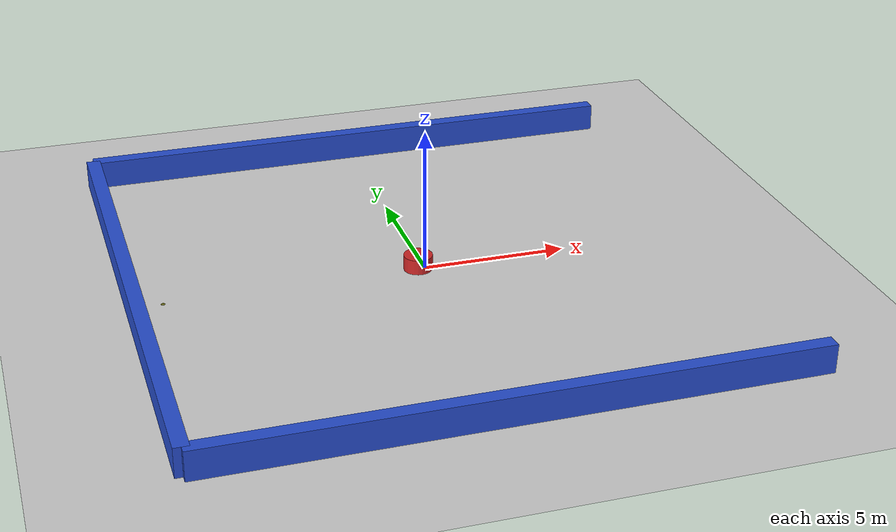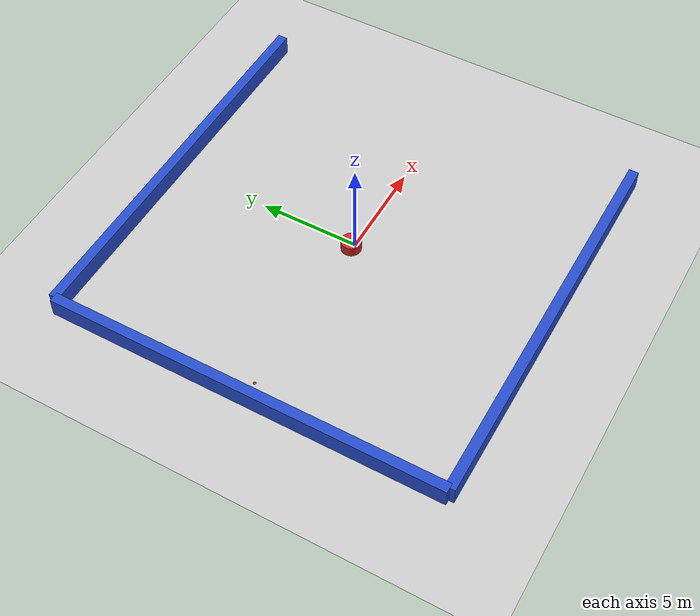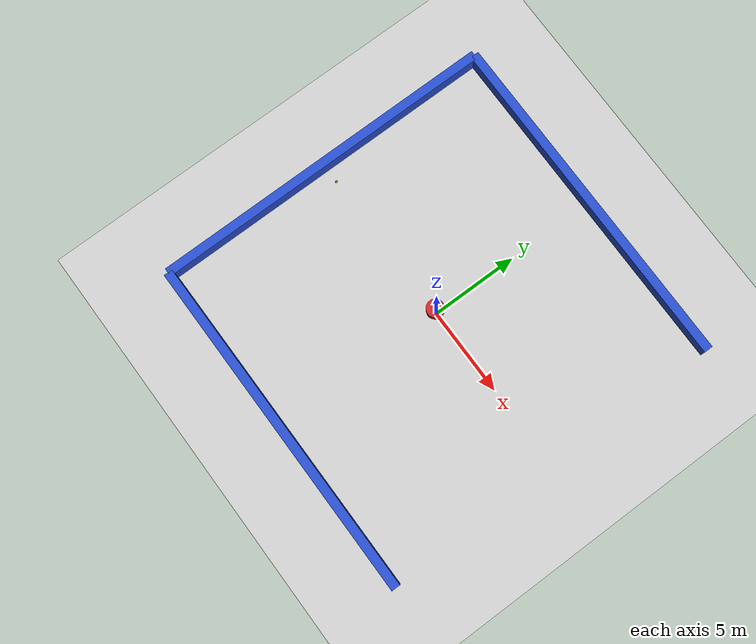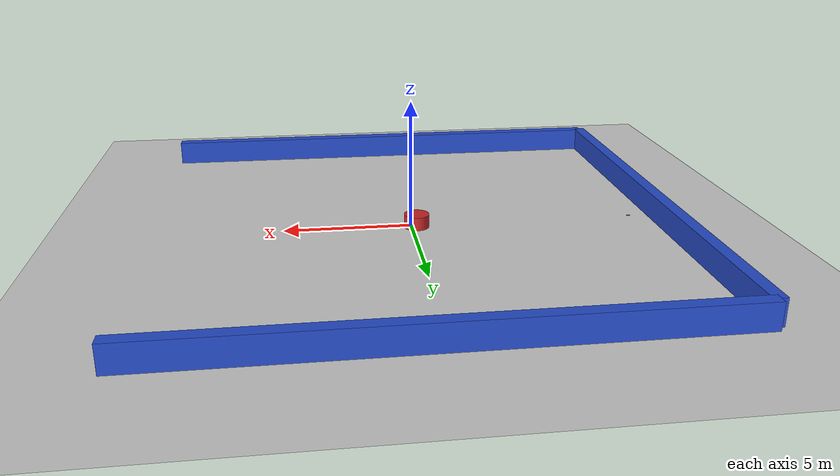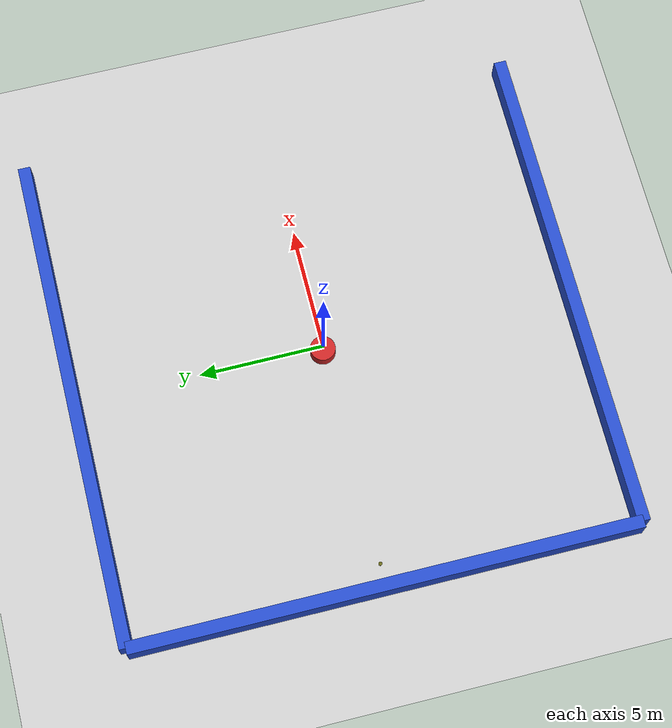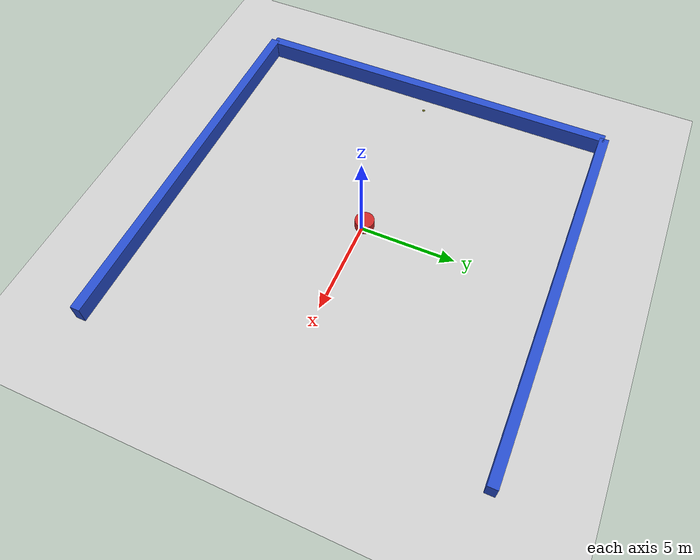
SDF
<sdf version="1.6">
   <world name="default">
      <include>
         <uri>model://ground_plane</uri>
      </include>
      <include>
         <uri>model://sun</uri>
      </include>

    <model name="mediumlibobs_122">
      <static>1</static>
      <pose frame="">-0.225000 0.075000 0.000000 0.000000 0.000000 0.000000</pose>
      <link name="link">
        <inertial>
          <mass>1</mass>
          <inertia>
            <ixx>0.145833</ixx>
            <ixy>0</ixy>
            <ixz>0</ixz>
            <iyy>0.145833</iyy>
            <iyz>0</iyz>
            <izz>0.125</izz>
          </inertia>
        </inertial>
        <collision name="collision">
           <geometry>
            <cylinder>
                <radius>0.5000</radius>
                 <length> 1 </length>
            </cylinder>
          </geometry>
           <surface>
            <contact>
              <ode />
            </contact>
            <bounce />
            <friction>
              <torsional>
                <ode />
              </torsional>
              <ode />
            </friction>
          </surface>
        </collision>
        <visual name="visual">
           <geometry>
            <cylinder>
                <radius>0.5000</radius>
                 <length> 1 </length>
            </cylinder>
          </geometry>
          <material>
            <script>
              <name>Gazebo/Red</name>
              <uri>file://media/materials/scripts/gazebo.material</uri>
            </script>
          </material>
        </visual>
        <self_collide>0</self_collide>
        <kinematic>0</kinematic>
        <gravity>1</gravity>
      </link>
      <plugin name="mediumlibobs_122" filename="mediumlibobs_122.so" />
    </model>

    <model name="mediumlibobs_45">
      <static>1</static>
      <pose frame="">-0.225000 0.075000 0.000000 0.000000 0.000000 0.000000</pose>
      <link name="link">
        <inertial>
          <mass>1</mass>
          <inertia>
            <ixx>0.145833</ixx>
            <ixy>0</ixy>
            <ixz>0</ixz>
            <iyy>0.145833</iyy>
            <iyz>0</iyz>
            <izz>0.125</izz>
          </inertia>
        </inertial>
        <collision name="collision">
           <geometry>
            <cylinder>
                <radius>0.5000</radius>
                 <length> 1 </length>
            </cylinder>
          </geometry>
           <surface>
            <contact>
              <ode />
            </contact>
            <bounce />
            <friction>
              <torsional>
                <ode />
              </torsional>
              <ode />
            </friction>
          </surface>
        </collision>
        <visual name="visual">
           <geometry>
            <cylinder>
                <radius>0.5000</radius>
                 <length> 1 </length>
            </cylinder>
          </geometry>
          <material>
            <script>
              <name>Gazebo/Red</name>
              <uri>file://media/materials/scripts/gazebo.material</uri>
            </script>
          </material>
        </visual>
        <self_collide>0</self_collide>
        <kinematic>0</kinematic>
        <gravity>1</gravity>
      </link>
      <plugin name="mediumlibobs_45" filename="mediumlibobs_45.so" />
    </model>

    <model name="mediumlibobs_145">
      <static>1</static>
      <pose frame="">-0.225000 0.075000 0.000000 0.000000 0.000000 0.000000</pose>
      <link name="link">
        <inertial>
          <mass>1</mass>
          <inertia>
            <ixx>0.145833</ixx>
            <ixy>0</ixy>
            <ixz>0</ixz>
            <iyy>0.145833</iyy>
            <iyz>0</iyz>
            <izz>0.125</izz>
          </inertia>
        </inertial>
        <collision name="collision">
           <geometry>
            <cylinder>
                <radius>0.5000</radius>
                 <length> 1 </length>
            </cylinder>
          </geometry>
           <surface>
            <contact>
              <ode />
            </contact>
            <bounce />
            <friction>
              <torsional>
                <ode />
              </torsional>
              <ode />
            </friction>
          </surface>
        </collision>
        <visual name="visual">
           <geometry>
            <cylinder>
                <radius>0.5000</radius>
                 <length> 1 </length>
            </cylinder>
          </geometry>
          <material>
            <script>
              <name>Gazebo/Red</name>
              <uri>file://media/materials/scripts/gazebo.material</uri>
            </script>
          </material>
        </visual>
        <self_collide>0</self_collide>
        <kinematic>0</kinematic>
        <gravity>1</gravity>
      </link>
      <plugin name="mediumlibobs_145" filename="mediumlibobs_145.so" />
    </model>

    <model name="mediumlibobs_89">
      <static>1</static>
      <pose frame="">-0.225000 0.075000 0.000000 0.000000 0.000000 0.000000</pose>
      <link name="link">
        <inertial>
          <mass>1</mass>
          <inertia>
            <ixx>0.145833</ixx>
            <ixy>0</ixy>
            <ixz>0</ixz>
            <iyy>0.145833</iyy>
            <iyz>0</iyz>
            <izz>0.125</izz>
          </inertia>
        </inertial>
        <collision name="collision">
           <geometry>
            <cylinder>
                <radius>0.5000</radius>
                 <length> 1 </length>
            </cylinder>
          </geometry>
           <surface>
            <contact>
              <ode />
            </contact>
            <bounce />
            <friction>
              <torsional>
                <ode />
              </torsional>
              <ode />
            </friction>
          </surface>
        </collision>
        <visual name="visual">
           <geometry>
            <cylinder>
                <radius>0.5000</radius>
                 <length> 1 </length>
            </cylinder>
          </geometry>
          <material>
            <script>
              <name>Gazebo/Red</name>
              <uri>file://media/materials/scripts/gazebo.material</uri>
            </script>
          </material>
        </visual>
        <self_collide>0</self_collide>
        <kinematic>0</kinematic>
        <gravity>1</gravity>
      </link>
      <plugin name="mediumlibobs_89" filename="mediumlibobs_89.so" />
    </model>

    <model name="mediumlibobs_112">
      <static>1</static>
      <pose frame="">-0.225000 0.075000 0.000000 0.000000 0.000000 0.000000</pose>
      <link name="link">
        <inertial>
          <mass>1</mass>
          <inertia>
            <ixx>0.145833</ixx>
            <ixy>0</ixy>
            <ixz>0</ixz>
            <iyy>0.145833</iyy>
            <iyz>0</iyz>
            <izz>0.125</izz>
          </inertia>
        </inertial>
        <collision name="collision">
           <geometry>
            <cylinder>
                <radius>0.5000</radius>
                 <length> 1 </length>
            </cylinder>
          </geometry>
           <surface>
            <contact>
              <ode />
            </contact>
            <bounce />
            <friction>
              <torsional>
                <ode />
              </torsional>
              <ode />
            </friction>
          </surface>
        </collision>
        <visual name="visual">
           <geometry>
            <cylinder>
                <radius>0.5000</radius>
                 <length> 1 </length>
            </cylinder>
          </geometry>
          <material>
            <script>
              <name>Gazebo/Red</name>
              <uri>file://media/materials/scripts/gazebo.material</uri>
            </script>
          </material>
        </visual>
        <self_collide>0</self_collide>
        <kinematic>0</kinematic>
        <gravity>1</gravity>
      </link>
      <plugin name="mediumlibobs_112" filename="mediumlibobs_112.so" />
    </model>

    <model name="mediumlibobs_178">
      <static>1</static>
      <pose frame="">-0.225000 0.075000 0.000000 0.000000 0.000000 0.000000</pose>
      <link name="link">
        <inertial>
          <mass>1</mass>
          <inertia>
            <ixx>0.145833</ixx>
            <ixy>0</ixy>
            <ixz>0</ixz>
            <iyy>0.145833</iyy>
            <iyz>0</iyz>
            <izz>0.125</izz>
          </inertia>
        </inertial>
        <collision name="collision">
           <geometry>
            <cylinder>
                <radius>0.5000</radius>
                 <length> 1 </length>
            </cylinder>
          </geometry>
           <surface>
            <contact>
              <ode />
            </contact>
            <bounce />
            <friction>
              <torsional>
                <ode />
              </torsional>
              <ode />
            </friction>
          </surface>
        </collision>
        <visual name="visual">
           <geometry>
            <cylinder>
                <radius>0.5000</radius>
                 <length> 1 </length>
            </cylinder>
          </geometry>
          <material>
            <script>
              <name>Gazebo/Red</name>
              <uri>file://media/materials/scripts/gazebo.material</uri>
            </script>
          </material>
        </visual>
        <self_collide>0</self_collide>
        <kinematic>0</kinematic>
        <gravity>1</gravity>
      </link>
      <plugin name="mediumlibobs_178" filename="mediumlibobs_178.so" />
    </model>

    <model name="hardlibobs_32">
      <static>1</static>
      <pose frame="">-0.225000 0.075000 0.000000 0.000000 0.000000 0.000000</pose>
      <link name="link">
        <inertial>
          <mass>1</mass>
          <inertia>
            <ixx>0.145833</ixx>
            <ixy>0</ixy>
            <ixz>0</ixz>
            <iyy>0.145833</iyy>
            <iyz>0</iyz>
            <izz>0.125</izz>
          </inertia>
        </inertial>
        <collision name="collision">
           <geometry>
            <cylinder>
                <radius>0.5000</radius>
                 <length> 1 </length>
            </cylinder>
          </geometry>
           <surface>
            <contact>
              <ode />
            </contact>
            <bounce />
            <friction>
              <torsional>
                <ode />
              </torsional>
              <ode />
            </friction>
          </surface>
        </collision>
        <visual name="visual">
           <geometry>
            <cylinder>
                <radius>0.5000</radius>
                 <length> 1 </length>
            </cylinder>
          </geometry>
          <material>
            <script>
              <name>Gazebo/Red</name>
              <uri>file://media/materials/scripts/gazebo.material</uri>
            </script>
          </material>
        </visual>
        <self_collide>0</self_collide>
        <kinematic>0</kinematic>
        <gravity>1</gravity>
      </link>
      <plugin name="hardlibobs_32" filename="hardlibobs_32.so" />
    </model>

    <model name="mediumlibobs_10">
      <static>1</static>
      <pose frame="">-0.225000 0.075000 0.000000 0.000000 0.000000 0.000000</pose>
      <link name="link">
        <inertial>
          <mass>1</mass>
          <inertia>
            <ixx>0.145833</ixx>
            <ixy>0</ixy>
            <ixz>0</ixz>
            <iyy>0.145833</iyy>
            <iyz>0</iyz>
            <izz>0.125</izz>
          </inertia>
        </inertial>
        <collision name="collision">
           <geometry>
            <cylinder>
                <radius>0.5000</radius>
                 <length> 1 </length>
            </cylinder>
          </geometry>
           <surface>
            <contact>
              <ode />
            </contact>
            <bounce />
            <friction>
              <torsional>
                <ode />
              </torsional>
              <ode />
            </friction>
          </surface>
        </collision>
        <visual name="visual">
           <geometry>
            <cylinder>
                <radius>0.5000</radius>
                 <length> 1 </length>
            </cylinder>
          </geometry>
          <material>
            <script>
              <name>Gazebo/Red</name>
              <uri>file://media/materials/scripts/gazebo.material</uri>
            </script>
          </material>
        </visual>
        <self_collide>0</self_collide>
        <kinematic>0</kinematic>
        <gravity>1</gravity>
      </link>
      <plugin name="mediumlibobs_10" filename="mediumlibobs_10.so" />
    </model>

    <model name="mediumlibobs_57">
      <static>1</static>
      <pose frame="">-0.225000 0.075000 0.000000 0.000000 0.000000 0.000000</pose>
      <link name="link">
        <inertial>
          <mass>1</mass>
          <inertia>
            <ixx>0.145833</ixx>
            <ixy>0</ixy>
            <ixz>0</ixz>
            <iyy>0.145833</iyy>
            <iyz>0</iyz>
            <izz>0.125</izz>
          </inertia>
        </inertial>
        <collision name="collision">
           <geometry>
            <cylinder>
                <radius>0.5000</radius>
                 <length> 1 </length>
            </cylinder>
          </geometry>
           <surface>
            <contact>
              <ode />
            </contact>
            <bounce />
            <friction>
              <torsional>
                <ode />
              </torsional>
              <ode />
            </friction>
          </surface>
        </collision>
        <visual name="visual">
           <geometry>
            <cylinder>
                <radius>0.5000</radius>
                 <length> 1 </length>
            </cylinder>
          </geometry>
          <material>
            <script>
              <name>Gazebo/Red</name>
              <uri>file://media/materials/scripts/gazebo.material</uri>
            </script>
          </material>
        </visual>
        <self_collide>0</self_collide>
        <kinematic>0</kinematic>
        <gravity>1</gravity>
      </link>
      <plugin name="mediumlibobs_57" filename="mediumlibobs_57.so" />
    </model>

    <model name="hardlibobs_188">
      <static>1</static>
      <pose frame="">-0.225000 0.075000 0.000000 0.000000 0.000000 0.000000</pose>
      <link name="link">
        <inertial>
          <mass>1</mass>
          <inertia>
            <ixx>0.145833</ixx>
            <ixy>0</ixy>
            <ixz>0</ixz>
            <iyy>0.145833</iyy>
            <iyz>0</iyz>
            <izz>0.125</izz>
          </inertia>
        </inertial>
        <collision name="collision">
           <geometry>
            <cylinder>
                <radius>0.5000</radius>
                 <length> 1 </length>
            </cylinder>
          </geometry>
           <surface>
            <contact>
              <ode />
            </contact>
            <bounce />
            <friction>
              <torsional>
                <ode />
              </torsional>
              <ode />
            </friction>
          </surface>
        </collision>
        <visual name="visual">
           <geometry>
            <cylinder>
                <radius>0.5000</radius>
                 <length> 1 </length>
            </cylinder>
          </geometry>
          <material>
            <script>
              <name>Gazebo/Red</name>
              <uri>file://media/materials/scripts/gazebo.material</uri>
            </script>
          </material>
        </visual>
        <self_collide>0</self_collide>
        <kinematic>0</kinematic>
        <gravity>1</gravity>
      </link>
      <plugin name="hardlibobs_188" filename="hardlibobs_188.so" />
    </model>

    <model name="mediumlibobs_128">
      <static>1</static>
      <pose frame="">-0.225000 0.075000 0.000000 0.000000 0.000000 0.000000</pose>
      <link name="link">
        <inertial>
          <mass>1</mass>
          <inertia>
            <ixx>0.145833</ixx>
            <ixy>0</ixy>
            <ixz>0</ixz>
            <iyy>0.145833</iyy>
            <iyz>0</iyz>
            <izz>0.125</izz>
          </inertia>
        </inertial>
        <collision name="collision">
           <geometry>
            <cylinder>
                <radius>0.5000</radius>
                 <length> 1 </length>
            </cylinder>
          </geometry>
           <surface>
            <contact>
              <ode />
            </contact>
            <bounce />
            <friction>
              <torsional>
                <ode />
              </torsional>
              <ode />
            </friction>
          </surface>
        </collision>
        <visual name="visual">
           <geometry>
            <cylinder>
                <radius>0.5000</radius>
                 <length> 1 </length>
            </cylinder>
          </geometry>
          <material>
            <script>
              <name>Gazebo/Red</name>
              <uri>file://media/materials/scripts/gazebo.material</uri>
            </script>
          </material>
        </visual>
        <self_collide>0</self_collide>
        <kinematic>0</kinematic>
        <gravity>1</gravity>
      </link>
      <plugin name="mediumlibobs_128" filename="mediumlibobs_128.so" />
    </model>

    <model name="mediumlibobs_132">
      <static>1</static>
      <pose frame="">-0.225000 0.075000 0.000000 0.000000 0.000000 0.000000</pose>
      <link name="link">
        <inertial>
          <mass>1</mass>
          <inertia>
            <ixx>0.145833</ixx>
            <ixy>0</ixy>
            <ixz>0</ixz>
            <iyy>0.145833</iyy>
            <iyz>0</iyz>
            <izz>0.125</izz>
          </inertia>
        </inertial>
        <collision name="collision">
           <geometry>
            <cylinder>
                <radius>0.5000</radius>
                 <length> 1 </length>
            </cylinder>
          </geometry>
           <surface>
            <contact>
              <ode />
            </contact>
            <bounce />
            <friction>
              <torsional>
                <ode />
              </torsional>
              <ode />
            </friction>
          </surface>
        </collision>
        <visual name="visual">
           <geometry>
            <cylinder>
                <radius>0.5000</radius>
                 <length> 1 </length>
            </cylinder>
          </geometry>
          <material>
            <script>
              <name>Gazebo/Red</name>
              <uri>file://media/materials/scripts/gazebo.material</uri>
            </script>
          </material>
        </visual>
        <self_collide>0</self_collide>
        <kinematic>0</kinematic>
        <gravity>1</gravity>
      </link>
      <plugin name="mediumlibobs_132" filename="mediumlibobs_132.so" />
    </model>

    <model name="hardlibobs_89">
      <static>1</static>
      <pose frame="">-0.225000 0.075000 0.000000 0.000000 0.000000 0.000000</pose>
      <link name="link">
        <inertial>
          <mass>1</mass>
          <inertia>
            <ixx>0.145833</ixx>
            <ixy>0</ixy>
            <ixz>0</ixz>
            <iyy>0.145833</iyy>
            <iyz>0</iyz>
            <izz>0.125</izz>
          </inertia>
        </inertial>
        <collision name="collision">
           <geometry>
            <cylinder>
                <radius>0.5000</radius>
                 <length> 1 </length>
            </cylinder>
          </geometry>
           <surface>
            <contact>
              <ode />
            </contact>
            <bounce />
            <friction>
              <torsional>
                <ode />
              </torsional>
              <ode />
            </friction>
          </surface>
        </collision>
        <visual name="visual">
           <geometry>
            <cylinder>
                <radius>0.5000</radius>
                 <length> 1 </length>
            </cylinder>
          </geometry>
          <material>
            <script>
              <name>Gazebo/Red</name>
              <uri>file://media/materials/scripts/gazebo.material</uri>
            </script>
          </material>
        </visual>
        <self_collide>0</self_collide>
        <kinematic>0</kinematic>
        <gravity>1</gravity>
      </link>
      <plugin name="hardlibobs_89" filename="hardlibobs_89.so" />
    </model>

    <model name="hardlibobs_111">
      <static>1</static>
      <pose frame="">-0.225000 0.075000 0.000000 0.000000 0.000000 0.000000</pose>
      <link name="link">
        <inertial>
          <mass>1</mass>
          <inertia>
            <ixx>0.145833</ixx>
            <ixy>0</ixy>
            <ixz>0</ixz>
            <iyy>0.145833</iyy>
            <iyz>0</iyz>
            <izz>0.125</izz>
          </inertia>
        </inertial>
        <collision name="collision">
           <geometry>
            <cylinder>
                <radius>0.5000</radius>
                 <length> 1 </length>
            </cylinder>
          </geometry>
           <surface>
            <contact>
              <ode />
            </contact>
            <bounce />
            <friction>
              <torsional>
                <ode />
              </torsional>
              <ode />
            </friction>
          </surface>
        </collision>
        <visual name="visual">
           <geometry>
            <cylinder>
                <radius>0.5000</radius>
                 <length> 1 </length>
            </cylinder>
          </geometry>
          <material>
            <script>
              <name>Gazebo/Red</name>
              <uri>file://media/materials/scripts/gazebo.material</uri>
            </script>
          </material>
        </visual>
        <self_collide>0</self_collide>
        <kinematic>0</kinematic>
        <gravity>1</gravity>
      </link>
      <plugin name="hardlibobs_111" filename="hardlibobs_111.so" />
    </model>

    <model name="hardlibobs_28">
      <static>1</static>
      <pose frame="">-0.225000 0.075000 0.000000 0.000000 0.000000 0.000000</pose>
      <link name="link">
        <inertial>
          <mass>1</mass>
          <inertia>
            <ixx>0.145833</ixx>
            <ixy>0</ixy>
            <ixz>0</ixz>
            <iyy>0.145833</iyy>
            <iyz>0</iyz>
            <izz>0.125</izz>
          </inertia>
        </inertial>
        <collision name="collision">
           <geometry>
            <cylinder>
                <radius>0.5000</radius>
                 <length> 1 </length>
            </cylinder>
          </geometry>
           <surface>
            <contact>
              <ode />
            </contact>
            <bounce />
            <friction>
              <torsional>
                <ode />
              </torsional>
              <ode />
            </friction>
          </surface>
        </collision>
        <visual name="visual">
           <geometry>
            <cylinder>
                <radius>0.5000</radius>
                 <length> 1 </length>
            </cylinder>
          </geometry>
          <material>
            <script>
              <name>Gazebo/Red</name>
              <uri>file://media/materials/scripts/gazebo.material</uri>
            </script>
          </material>
        </visual>
        <self_collide>0</self_collide>
        <kinematic>0</kinematic>
        <gravity>1</gravity>
      </link>
      <plugin name="hardlibobs_28" filename="hardlibobs_28.so" />
    </model>

    <model name="mediumlibobs_173">
      <static>1</static>
      <pose frame="">-0.225000 0.075000 0.000000 0.000000 0.000000 0.000000</pose>
      <link name="link">
        <inertial>
          <mass>1</mass>
          <inertia>
            <ixx>0.145833</ixx>
            <ixy>0</ixy>
            <ixz>0</ixz>
            <iyy>0.145833</iyy>
            <iyz>0</iyz>
            <izz>0.125</izz>
          </inertia>
        </inertial>
        <collision name="collision">
           <geometry>
            <cylinder>
                <radius>0.5000</radius>
                 <length> 1 </length>
            </cylinder>
          </geometry>
           <surface>
            <contact>
              <ode />
            </contact>
            <bounce />
            <friction>
              <torsional>
                <ode />
              </torsional>
              <ode />
            </friction>
          </surface>
        </collision>
        <visual name="visual">
           <geometry>
            <cylinder>
                <radius>0.5000</radius>
                 <length> 1 </length>
            </cylinder>
          </geometry>
          <material>
            <script>
              <name>Gazebo/Red</name>
              <uri>file://media/materials/scripts/gazebo.material</uri>
            </script>
          </material>
        </visual>
        <self_collide>0</self_collide>
        <kinematic>0</kinematic>
        <gravity>1</gravity>
      </link>
      <plugin name="mediumlibobs_173" filename="mediumlibobs_173.so" />
    </model>

    <model name="mediumlibobs_121">
      <static>1</static>
      <pose frame="">-0.225000 0.075000 0.000000 0.000000 0.000000 0.000000</pose>
      <link name="link">
        <inertial>
          <mass>1</mass>
          <inertia>
            <ixx>0.145833</ixx>
            <ixy>0</ixy>
            <ixz>0</ixz>
            <iyy>0.145833</iyy>
            <iyz>0</iyz>
            <izz>0.125</izz>
          </inertia>
        </inertial>
        <collision name="collision">
           <geometry>
            <cylinder>
                <radius>0.5000</radius>
                 <length> 1 </length>
            </cylinder>
          </geometry>
           <surface>
            <contact>
              <ode />
            </contact>
            <bounce />
            <friction>
              <torsional>
                <ode />
              </torsional>
              <ode />
            </friction>
          </surface>
        </collision>
        <visual name="visual">
           <geometry>
            <cylinder>
                <radius>0.5000</radius>
                 <length> 1 </length>
            </cylinder>
          </geometry>
          <material>
            <script>
              <name>Gazebo/Red</name>
              <uri>file://media/materials/scripts/gazebo.material</uri>
            </script>
          </material>
        </visual>
        <self_collide>0</self_collide>
        <kinematic>0</kinematic>
        <gravity>1</gravity>
      </link>
      <plugin name="mediumlibobs_121" filename="mediumlibobs_121.so" />
    </model>

      <model name="back_wall">
      <static>1</static>\   <pose frame="">-10 0 .5 0 0 0</pose>        <link name="box_link">

	<collision name="collision">
            <geometry>
              <box>
                <size>.5 20 1</size>
              </box>
            </geometry>
           <surface>
            <contact>
              <ode />
            </contact>
            <bounce />
            <friction>
              <torsional>
                <ode />
              </torsional>
              <ode />
            </friction>
          </surface>
        </collision>

          <visual name="visual">
            <geometry>
              <box>
                <size>.5 20 1</size>
              </box>
            </geometry>
          <material>
                 <script>
                     <name>Gazebo/Blue</name>
                         <uri>file://media/materials/scripts/gazebo.material</uri>
                         </script>
                     </material>
          </visual>
        </link>
      </model>
      <model name="top_wall">
      <static>1</static>
       <pose frame="">0 10 .5 0 0 0</pose>        <link name="box_link">

	<collision name="collision">
           <geometry>
              <box>
                <size>20 .5 1</size>
              </box>
            </geometry>
           <surface>
            <contact>
              <ode />
            </contact>
            <bounce />
            <friction>
              <torsional>
                <ode />
              </torsional>
              <ode />
            </friction>
          </surface>
        </collision>
          <visual name="visual">
            <geometry>
              <box>
                <size>20 .5 1</size>
              </box>
            </geometry>
          <material>
                 <script>
                     <name>Gazebo/Blue</name>
                         <uri>file://media/materials/scripts/gazebo.material</uri>
                         </script>
                     </material>
          </visual>
        </link>
      </model>
      <model name="bottom_wall">
      <static>1</static>
       <pose frame="">0 -10 .5 0 0 0</pose>        <link name="box_link">
	<collision name="collision">
            <geometry>
              <box>
                <size>20 .5 1</size>
              </box>
            </geometry>
           <surface>
            <contact>
              <ode />
            </contact>
            <bounce />
            <friction>
              <torsional>
                <ode />
              </torsional>
              <ode />
            </friction>
          </surface>
        </collision>
          <visual name="visual">
            <geometry>
              <box>
                <size>20 .5 1</size>
              </box>
            </geometry>
          <material>
                 <script>
                     <name>Gazebo/Blue</name>
                         <uri>file://media/materials/scripts/gazebo.material</uri>
                         </script>
                     </material>
          </visual>
        </link>
      </model>
   <model name="goal"><static>1</static><pose frame="">-9.00000 0.000000 0.000000 0.000000 0.000000 0.000000</pose><link name="link"><inertial><mass>1</mass><inertia><ixx>0.145833</ixx><ixy>0</ixy><ixz>0</ixz><iyy>0.145833</iyy><iyz>0</iyz><izz>0.125</izz></inertia></inertial><collision name="collision"><geometry><cylinder><radius>0.075000</radius><length>1</length></cylinder></geometry><max_contacts>10</max_contacts><surface><contact><ode /></contact><bounce /><friction><torsional><ode /></torsional><ode /></friction></surface></collision><visual name="visual"><geometry><cylinder><radius>0.075000</radius><length>0.001</length></cylinder></geometry><material><ambient>0 1 0 1</ambient><diffuse>0.4 0.4 0.1 1</diffuse></material><material><script><name>Gazebo/Grey</name><uri>file://media/materials/scripts/gazebo.material</uri></script></material></visual><self_collide>0</self_collide><kinematic>0</kinematic><gravity>0</gravity></link></model></world>
</sdf>
